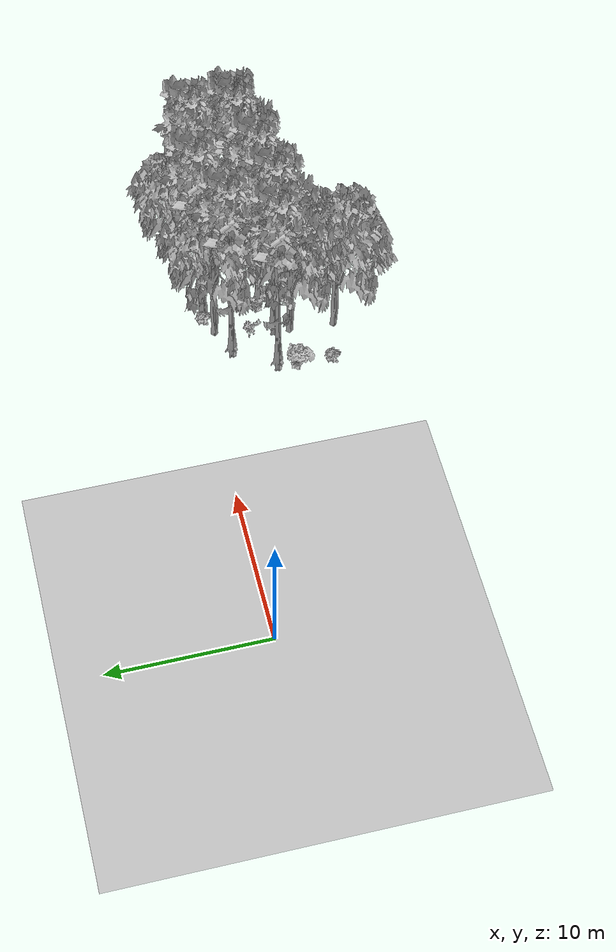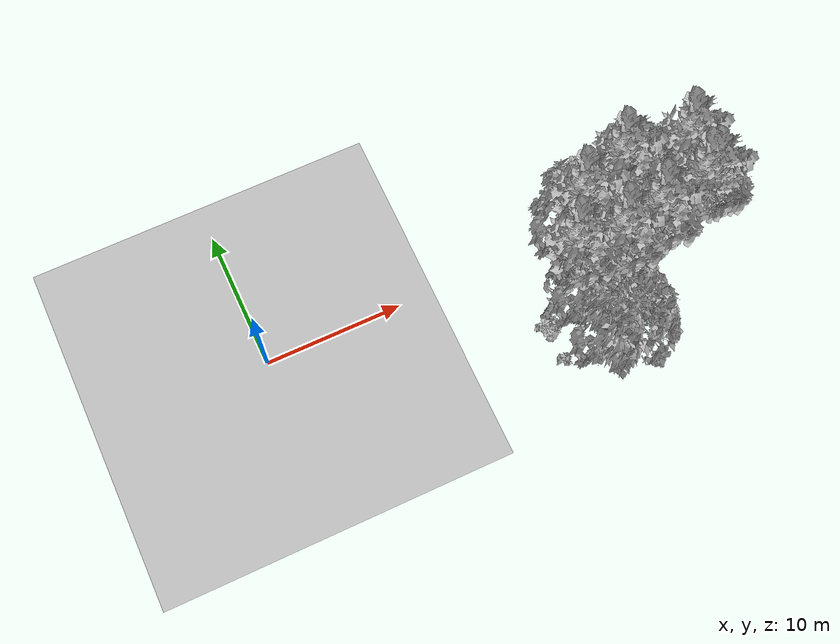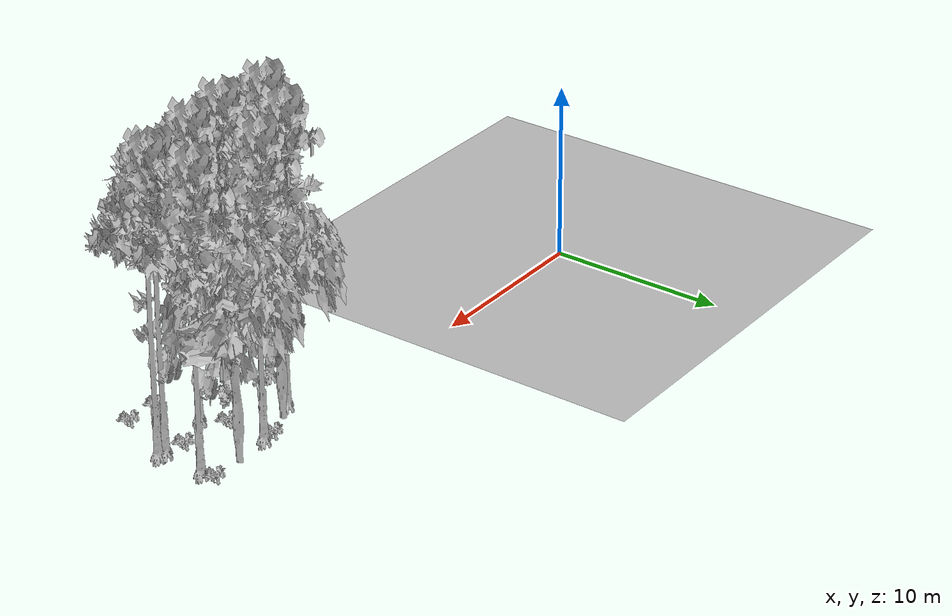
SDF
<sdf version="1.7">
 <world name="default">
  <model name="ground_plane">
   <static>1</static>
   <link name="link">
    <collision name="collision">
     <pose>-50 0 0 0 -0 0</pose>
     <geometry><plane><normal>0 0 1</normal><size>80 80</size></plane></geometry>
     <surface><contact><ode><min_depth>0.01</min_depth><max_vel>0</max_vel></ode></contact></surface>
    </collision>
    <visual name="grass">
     <cast_shadows>0</cast_shadows>
     <geometry>
      <mesh>
       <scale>0.46714285714285714 0.46714285714285714 0.1</scale>
       <uri>file://grass_plane/meshes/grass_plane.dae</uri>
      </mesh>
     </geometry>
    </visual>
   </link>
  </model>
  <model name="Tree 145">
   <static>1</static>
   <pose>20.84286459837557 -2.2212030080856238 0 1.57079 -0 0</pose>
   <link name="link">
    <collision name="collision">
     <geometry><mesh><scale>3.5 5 3.5</scale><uri>model://tree_9/meshes/tree_9.obj</uri></mesh></geometry>
    </collision>
    <visual name="visual">
     <geometry><mesh><scale>3.5 5 3.5</scale><uri>model://tree_9/meshes/tree_9.obj</uri></mesh></geometry>
    </visual>
   </link>
  </model>
  <model name="Tree 282">
   <static>1</static>
   <pose>22.074686980076628 -1.392356092041041 0 1.57079 -0 0</pose>
   <link name="link">
    <collision name="collision">
     <geometry><mesh><scale>3.5 5 3.5</scale><uri>model://tree_2/meshes/tree_2.obj</uri></mesh></geometry>
    </collision>
    <visual name="visual">
     <geometry><mesh><scale>3.5 5 3.5</scale><uri>model://tree_2/meshes/tree_2.obj</uri></mesh></geometry>
    </visual>
   </link>
  </model>
  <model name="Tree 333">
   <static>1</static>
   <pose>21.197604530332647 -6.0843604428532245 0 1.57079 -0 0</pose>
   <link name="link">
    <collision name="collision">
     <geometry><mesh><scale>3.5 5 3.5</scale><uri>model://tree_2/meshes/tree_2.obj</uri></mesh></geometry>
    </collision>
    <visual name="visual">
     <geometry><mesh><scale>3.5 5 3.5</scale><uri>model://tree_2/meshes/tree_2.obj</uri></mesh></geometry>
    </visual>
   </link>
  </model>
  <model name="Tree 344">
   <static>1</static>
   <pose>19.141187827817532 -4.797572925757379 0 1.57079 -0 0</pose>
   <link name="link">
    <collision name="collision">
     <geometry><mesh><scale>3.5 5 3.5</scale><uri>model://tree_9/meshes/tree_9.obj</uri></mesh></geometry>
    </collision>
    <visual name="visual">
     <geometry><mesh><scale>3.5 5 3.5</scale><uri>model://tree_9/meshes/tree_9.obj</uri></mesh></geometry>
    </visual>
   </link>
  </model>
  <model name="Tree 379">
   <static>1</static>
   <pose>26.442382700442508 -0.49245388034813686 0 1.57079 -0 0</pose>
   <link name="link">
    <collision name="collision">
     <geometry><mesh><scale>3.5 5 3.5</scale><uri>model://tree_2/meshes/tree_2.obj</uri></mesh></geometry>
    </collision>
    <visual name="visual">
     <geometry><mesh><scale>3.5 5 3.5</scale><uri>model://tree_2/meshes/tree_2.obj</uri></mesh></geometry>
    </visual>
   </link>
  </model>
  <model name="Tree 404">
   <static>1</static>
   <pose>27.785740547219845 -4.158956333103312 0 1.57079 -0 0</pose>
   <link name="link">
    <collision name="collision">
     <geometry><mesh><scale>3.5 5 3.5</scale><uri>model://tree_9/meshes/tree_9.obj</uri></mesh></geometry>
    </collision>
    <visual name="visual">
     <geometry><mesh><scale>3.5 5 3.5</scale><uri>model://tree_9/meshes/tree_9.obj</uri></mesh></geometry>
    </visual>
   </link>
  </model>
  <model name="Tree 442">
   <static>1</static>
   <pose>21.048134742861592 -8.927111531598541 0 1.57079 -0 0</pose>
   <link name="link">
    <collision name="collision">
     <geometry><mesh><scale>3.5 5 3.5</scale><uri>model://tree_2/meshes/tree_2.obj</uri></mesh></geometry>
    </collision>
    <visual name="visual">
     <geometry><mesh><scale>3.5 5 3.5</scale><uri>model://tree_2/meshes/tree_2.obj</uri></mesh></geometry>
    </visual>
   </link>
  </model>
  <model name="Tree 444">
   <static>1</static>
   <pose>21.955673344046716 -5.181381192977604 0 1.57079 -0 0</pose>
   <link name="link">
    <collision name="collision">
     <geometry><mesh><scale>3.5 5 3.5</scale><uri>model://tree_9/meshes/tree_9.obj</uri></mesh></geometry>
    </collision>
    <visual name="visual">
     <geometry><mesh><scale>3.5 5 3.5</scale><uri>model://tree_9/meshes/tree_9.obj</uri></mesh></geometry>
    </visual>
   </link>
  </model>
  <model name="Tree 505">
   <static>1</static>
   <pose>24.523479407291703 -4.823557513848058 0 1.57079 -0 0</pose>
   <link name="link">
    <collision name="collision">
     <geometry><mesh><scale>3.5 5 3.5</scale><uri>model://tree_9/meshes/tree_9.obj</uri></mesh></geometry>
    </collision>
    <visual name="visual">
     <geometry><mesh><scale>3.5 5 3.5</scale><uri>model://tree_9/meshes/tree_9.obj</uri></mesh></geometry>
    </visual>
   </link>
  </model>
  <model name="Tree 557">
   <static>1</static>
   <pose>24.045720039375325 -1.0430565223669745 0 1.57079 -0 0</pose>
   <link name="link">
    <collision name="collision">
     <geometry><mesh><scale>3.5 5 3.5</scale><uri>model://tree_9/meshes/tree_9.obj</uri></mesh></geometry>
    </collision>
    <visual name="visual">
     <geometry><mesh><scale>3.5 5 3.5</scale><uri>model://tree_9/meshes/tree_9.obj</uri></mesh></geometry>
    </visual>
   </link>
  </model>
  <model name="Tree 577">
   <static>1</static>
   <pose>28.229058501171423 -4.252980466812431 0 1.57079 -0 0</pose>
   <link name="link">
    <collision name="collision">
     <geometry><mesh><scale>3.5 5 3.5</scale><uri>model://tree_9/meshes/tree_9.obj</uri></mesh></geometry>
    </collision>
    <visual name="visual">
     <geometry><mesh><scale>3.5 5 3.5</scale><uri>model://tree_9/meshes/tree_9.obj</uri></mesh></geometry>
    </visual>
   </link>
  </model>
  <model name="Tree 583">
   <static>1</static>
   <pose>28.154775457410125 -1.5473995724309475 0 1.57079 -0 0</pose>
   <link name="link">
    <collision name="collision">
     <geometry><mesh><scale>3.5 5 3.5</scale><uri>model://tree_9/meshes/tree_9.obj</uri></mesh></geometry>
    </collision>
    <visual name="visual">
     <geometry><mesh><scale>3.5 5 3.5</scale><uri>model://tree_9/meshes/tree_9.obj</uri></mesh></geometry>
    </visual>
   </link>
  </model>
  <model name="Bush 38">
   <static>1</static>
   <pose>18.68771265550759 -8.266825283027146 0 1.57079 -0 0</pose>
   <link name="link">
    <collision name="collision">
     <geometry><mesh><scale>2 2 2</scale><uri>model://bush_2/meshes/bush_2.obj</uri></mesh></geometry>
     <surface><contact><collide_without_contact>false</collide_without_contact></contact></surface>
    </collision>
    <visual name="visual">
     <geometry><mesh><scale>2 2 2</scale><uri>model://bush_2/meshes/bush_2.obj</uri></mesh></geometry>
    </visual>
   </link>
  </model>
  <model name="Bush 131">
   <static>1</static>
   <pose>26.7971062425069 -7.478703454000154 0 1.57079 -0 0</pose>
   <link name="link">
    <collision name="collision">
     <geometry><mesh><scale>2 2 2</scale><uri>model://bush_2/meshes/bush_2.obj</uri></mesh></geometry>
     <surface><contact><collide_without_contact>false</collide_without_contact></contact></surface>
    </collision>
    <visual name="visual">
     <geometry><mesh><scale>2 2 2</scale><uri>model://bush_2/meshes/bush_2.obj</uri></mesh></geometry>
    </visual>
   </link>
  </model>
  <model name="Bush 146">
   <static>1</static>
   <pose>28.179332566766092 -0.6513035715377313 0 1.57079 -0 0</pose>
   <link name="link">
    <collision name="collision">
     <geometry><mesh><scale>2 2 2</scale><uri>model://bush_2/meshes/bush_2.obj</uri></mesh></geometry>
     <surface><contact><collide_without_contact>false</collide_without_contact></contact></surface>
    </collision>
    <visual name="visual">
     <geometry><mesh><scale>2 2 2</scale><uri>model://bush_2/meshes/bush_2.obj</uri></mesh></geometry>
    </visual>
   </link>
  </model>
  <model name="Bush 182">
   <static>1</static>
   <pose>23.468999947484782 -5.03110213289672 0 1.57079 -0 0</pose>
   <link name="link">
    <collision name="collision">
     <geometry><mesh><scale>2 2 2</scale><uri>model://bush_5/meshes/bush_5.obj</uri></mesh></geometry>
     <surface><contact><collide_without_contact>false</collide_without_contact></contact></surface>
    </collision>
    <visual name="visual">
     <geometry><mesh><scale>2 2 2</scale><uri>model://bush_5/meshes/bush_5.obj</uri></mesh></geometry>
    </visual>
   </link>
  </model>
  <model name="Bush 209">
   <static>1</static>
   <pose>23.491331254449584 -0.9582642280491314 0 1.57079 -0 0</pose>
   <link name="link">
    <collision name="collision">
     <geometry><mesh><scale>2 2 2</scale><uri>model://bush_2/meshes/bush_2.obj</uri></mesh></geometry>
     <surface><contact><collide_without_contact>false</collide_without_contact></contact></surface>
    </collision>
    <visual name="visual">
     <geometry><mesh><scale>2 2 2</scale><uri>model://bush_2/meshes/bush_2.obj</uri></mesh></geometry>
    </visual>
   </link>
  </model>
  <model name="Bush 211">
   <static>1</static>
   <pose>18.507527818658787 -6.1413414487727565 0 1.57079 -0 0</pose>
   <link name="link">
    <collision name="collision">
     <geometry><mesh><scale>2 2 2</scale><uri>model://bush_1/meshes/bush_1.obj</uri></mesh></geometry>
     <surface><contact><collide_without_contact>false</collide_without_contact></contact></surface>
    </collision>
    <visual name="visual">
     <geometry><mesh><scale>2 2 2</scale><uri>model://bush_1/meshes/bush_1.obj</uri></mesh></geometry>
    </visual>
   </link>
  </model>
  <model name="Bush 297">
   <static>1</static>
   <pose>21.361463055563043 -3.435007561531492 0 1.57079 -0 0</pose>
   <link name="link">
    <collision name="collision">
     <geometry><mesh><scale>2 2 2</scale><uri>model://bush_5/meshes/bush_5.obj</uri></mesh></geometry>
     <surface><contact><collide_without_contact>false</collide_without_contact></contact></surface>
    </collision>
    <visual name="visual">
     <geometry><mesh><scale>2 2 2</scale><uri>model://bush_5/meshes/bush_5.obj</uri></mesh></geometry>
    </visual>
   </link>
  </model>
  <model name="Bush 444">
   <static>1</static>
   <pose>26.79636405645806 -3.8613757751231788 0 1.57079 -0 0</pose>
   <link name="link">
    <collision name="collision">
     <geometry><mesh><scale>2 2 2</scale><uri>model://bush_2/meshes/bush_2.obj</uri></mesh></geometry>
     <surface><contact><collide_without_contact>false</collide_without_contact></contact></surface>
    </collision>
    <visual name="visual">
     <geometry><mesh><scale>2 2 2</scale><uri>model://bush_2/meshes/bush_2.obj</uri></mesh></geometry>
    </visual>
   </link>
  </model>
  <model name="Bush 483">
   <static>1</static>
   <pose>23.973022999916402 -3.4911515096486383 0 1.57079 -0 0</pose>
   <link name="link">
    <collision name="collision">
     <geometry><mesh><scale>2 2 2</scale><uri>model://bush_2/meshes/bush_2.obj</uri></mesh></geometry>
     <surface><contact><collide_without_contact>false</collide_without_contact></contact></surface>
    </collision>
    <visual name="visual">
     <geometry><mesh><scale>2 2 2</scale><uri>model://bush_2/meshes/bush_2.obj</uri></mesh></geometry>
    </visual>
   </link>
  </model>
  <model name="Bush 590">
   <static>1</static>
   <pose>23.276789980113783 -4.2978368331349515 0 1.57079 -0 0</pose>
   <link name="link">
    <collision name="collision">
     <geometry><mesh><scale>2 2 2</scale><uri>model://bush_0/meshes/bush_0.obj</uri></mesh></geometry>
     <surface><contact><collide_without_contact>false</collide_without_contact></contact></surface>
    </collision>
    <visual name="visual">
     <geometry><mesh><scale>2 2 2</scale><uri>model://bush_0/meshes/bush_0.obj</uri></mesh></geometry>
    </visual>
   </link>
  </model>
  <model name="Bush 600">
   <static>1</static>
   <pose>24.926048100734477 -7.425943503936132 0 1.57079 -0 0</pose>
   <link name="link">
    <collision name="collision">
     <geometry><mesh><scale>2 2 2</scale><uri>model://bush_2/meshes/bush_2.obj</uri></mesh></geometry>
     <surface><contact><collide_without_contact>false</collide_without_contact></contact></surface>
    </collision>
    <visual name="visual">
     <geometry><mesh><scale>2 2 2</scale><uri>model://bush_2/meshes/bush_2.obj</uri></mesh></geometry>
    </visual>
   </link>
  </model>
 </world>
</sdf>
